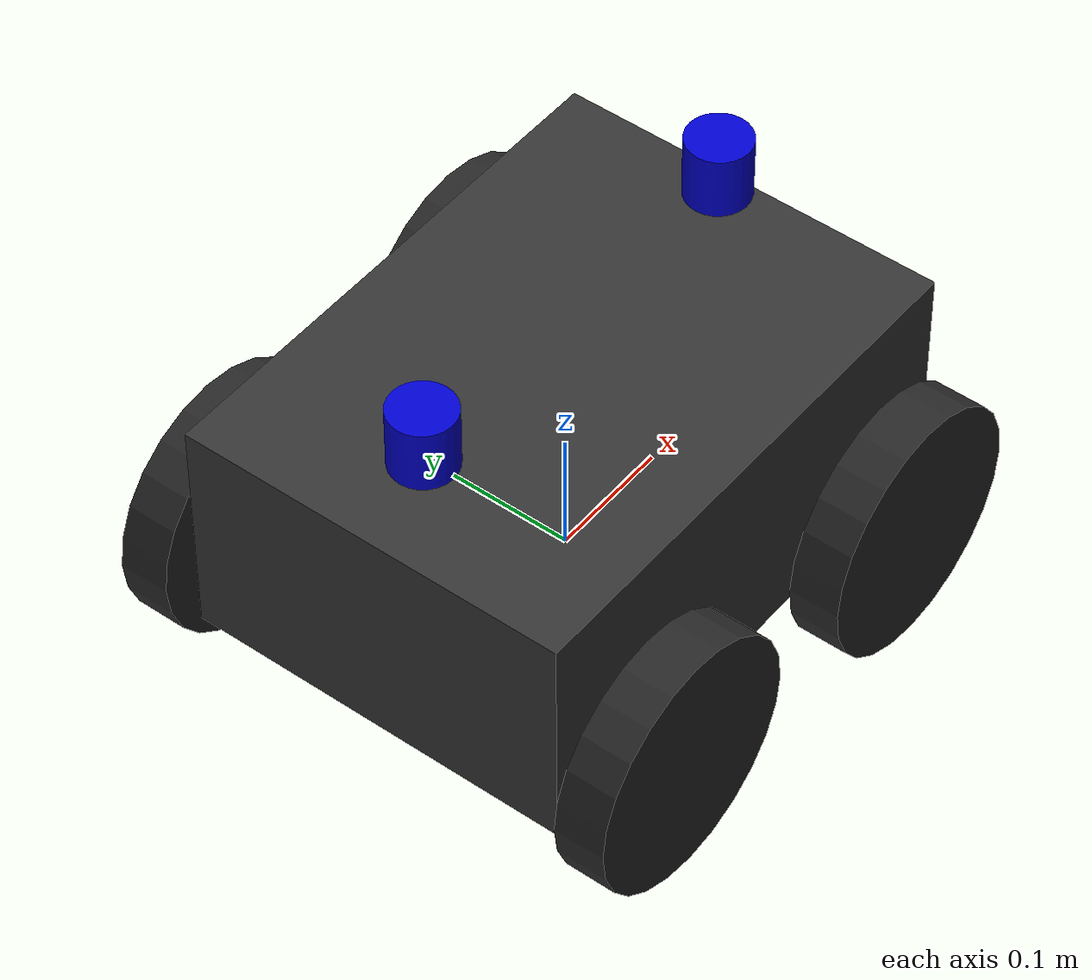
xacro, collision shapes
<?xml version="1.0"?>
<robot name="jackal" xmlns:xacro="http://www.ros.org/wiki/xacro">
  <xacro:arg name="is_sim" default="false" />
  <xacro:arg name="prefix" default="" />
  <xacro:arg name="gazebo_controllers" default="$(find jackal_control)/config/control.yaml" />
  <xacro:property name="PI" value="3.1415926535897931" />

  <xacro:property name="wheelbase" value="0.262" />
  <xacro:property name="track" value="0.37559" />
  <xacro:property name="wheel_vertical_offset" value="0.0345" />
  <xacro:property name="footprint_vertical_offset" value="-0.0655" />
  <xacro:property name="wheel_radius" value="0.098" />
  <xacro:property name="wheel_width" value="0.040" />
  <xacro:property name="chassis_length" value="0.420" />
  <xacro:property name="chassis_width" value="0.310" />
  <xacro:property name="chassis_height" value="0.184" />
  <xacro:property name="dummy_inertia" value="1e-05"/>
  <xacro:property name="mount_spacing" value="0.120" />

  <material name="dark_grey"><color rgba="0.2 0.2 0.2 1.0" /></material>
  <material name="yellow"><color rgba="0.8 0.8 0.0 1.0" /></material>
  <material name="black"><color rgba="0.15 0.15 0.15 1.0" /></material>
  <material name="blue"><color rgba="0.0 0.0 0.8 1.0" /></material>

  <xacro:macro name="wheel" params="prefix *joint_pose">
    <link name="${prefix}_wheel_link">
      <visual>
        <origin xyz="0 0 0" rpy="${PI/2} 0 0"/>
        <geometry><mesh filename="package://jackal_description/meshes/jackal-wheel.stl"/></geometry>
        <material name="black" />
      </visual>
      <collision>
        <origin xyz="0 0 0" rpy="${PI/2} 0 0"/>
        <geometry><cylinder radius="${wheel_radius}" length="${wheel_width}"/></geometry>
      </collision>
      <inertial>
        <origin xyz="0 0 0" rpy="0 0 0"/><mass value="1.0"/>
        <inertia ixx="0.0013" ixy="0" ixz="0" iyy="0.0024" iyz="0" izz="0.0013"/>
      </inertial>
    </link>
    <gazebo reference="${prefix}_wheel_link">
      <material>Gazebo/DarkGrey</material>
      <mu1 value="2.0"/><mu2 value="2.0"/><kp value="10000000.0" /><kd value="1.0" />
    </gazebo>
    <joint name="${prefix}_wheel_joint" type="continuous">
      <parent link="chassis_link"/><child link="${prefix}_wheel_link" />
      <xacro:insert_block name="joint_pose" /><axis xyz="0 1 0" />
    </joint>
  </xacro:macro>

  <xacro:wheel prefix="front_left"><origin xyz="${wheelbase/2} ${track/2} ${wheel_vertical_offset}" rpy="0 0 0" /></xacro:wheel>
  <xacro:wheel prefix="front_right"><origin xyz="${wheelbase/2} ${-track/2} ${wheel_vertical_offset}" rpy="0 0 0" /></xacro:wheel>
  <xacro:wheel prefix="rear_left"><origin xyz="${-wheelbase/2} ${track/2} ${wheel_vertical_offset}" rpy="0 0 0" /></xacro:wheel>
  <xacro:wheel prefix="rear_right"><origin xyz="${-wheelbase/2} ${-track/2} ${wheel_vertical_offset}" rpy="0 0 0" /></xacro:wheel>

  <link name="base_link"></link>
  <joint name="base_link_joint" type="fixed"><parent link="base_link"/><child link="chassis_link" /></joint>
  <link name="chassis_link">
    <visual>
      <origin xyz="0 0 ${footprint_vertical_offset}" rpy="${PI/2} 0 ${PI/2}"/>
      <geometry><mesh filename="package://jackal_description/meshes/jackal-base.stl"/></geometry>
      <material name="dark_grey" />
    </visual>
    <collision>
      <origin xyz="0 0 ${chassis_height/2}"/><geometry><box size="${chassis_length} ${chassis_width} ${chassis_height}"/></geometry>
    </collision>
    <inertial>
      <origin xyz="0.012 0.002 0.067" rpy="0 0 0"/><mass value="16.523"/>
      <inertia ixx="0.3136" ixy="-0.0008" ixz="0.0164" iyy="0.3922" iyz="-0.0009" izz="0.4485"/>
    </inertial>
  </link>

  <joint name="mid_mount_joint" type="fixed"><parent link="chassis_link" /><child link="mid_mount" /><origin xyz="0 0 ${chassis_height}" /></joint>
  <link name="mid_mount"></link>
  <joint name="front_mount_joint" type="fixed"><parent link="mid_mount" /><child link="front_mount" /><origin xyz="${mount_spacing} 0 0" /></joint>
  <link name="front_mount"></link>

  <link name="front_laser">
    <visual><geometry><cylinder radius="0.025" length="0.05"/></geometry><material name="blue"/></visual>
    <collision><geometry><cylinder radius="0.025" length="0.05"/></geometry></collision>
    <inertial><mass value="0.1"/><inertia ixx="0.001" ixy="0" ixz="0" iyy="0.001" iyz="0" izz="0.001"/></inertial>
  </link>
  <joint name="front_laser_joint" type="fixed"><parent link="front_mount"/><child link="front_laser"/><origin xyz="0.05 0 0.05" rpy="0 0 0"/> </joint>

  <gazebo reference="front_laser">
    <material>Gazebo/Blue</material>
    <sensor name="lidar_navigation" type="ray">
      <always_on>true</always_on><visualize>false</visualize><update_rate>30.0</update_rate>
      <ray>
        <scan><horizontal><samples>360</samples><resolution>1</resolution>
          <min_angle>-1.6</min_angle><max_angle>1.6</max_angle></horizontal></scan>
        <range><min>0.40</min><max>50.0</max><resolution>0.01</resolution></range>
      </ray>
      <plugin name="nav_scan" filename="libgazebo_ros_ray_sensor.so">
        <ros><remapping>~/out:=/scan</remapping></ros>
        <output_type>sensor_msgs/LaserScan</output_type><frame_name>front_laser</frame_name>
      </plugin>
    </sensor>
  </gazebo>

  <link name="rear_laser">
    <visual><geometry><cylinder radius="0.025" length="0.05"/></geometry><material name="blue"/></visual>
    <collision><geometry><cylinder radius="0.025" length="0.05"/></geometry></collision>
    <inertial><mass value="0.1"/><inertia ixx="0.001" ixy="0" ixz="0" iyy="0.001" iyz="0" izz="0.001"/></inertial>
  </link>
  <joint name="rear_laser_joint" type="fixed">
    <parent link="chassis_link"/><child link="rear_laser"/>
    <origin xyz="-0.15 0 0.234" rpy="0 0 ${PI}"/>
  </joint>

  <gazebo reference="rear_laser">
    <material>Gazebo/Blue</material>
    <sensor name="rear_lidar" type="ray">
      <always_on>true</always_on><update_rate>30.0</update_rate>
      <ray>
        <scan><horizontal><samples>360</samples><resolution>1</resolution>
          <min_angle>-1.6</min_angle><max_angle>1.6</max_angle></horizontal></scan>
        <range><min>0.40</min><max>50.0</max><resolution>0.01</resolution></range>
      </ray>
      <plugin name="rear_nav_scan" filename="libgazebo_ros_ray_sensor.so">
        <ros><remapping>~/out:=/scan_rear</remapping></ros>
        <output_type>sensor_msgs/LaserScan</output_type><frame_name>rear_laser</frame_name>
      </plugin>
    </sensor>
  </gazebo>

  <link name="front_laser_obstacle_link"/>
  <joint name="front_laser_obstacle_joint" type="fixed"><parent link="front_laser"/><child link="front_laser_obstacle_link"/><origin xyz="0 0 0"/></joint>

  <gazebo reference="front_laser_obstacle_link">
    <sensor name="lidar_obstacles" type="ray">
      <always_on>true</always_on><visualize>false</visualize><update_rate>5.0</update_rate>
      <ray>
        <scan>
          <horizontal><samples>60</samples><min_angle>-0.5</min_angle><max_angle>0.5</max_angle></horizontal>
          <vertical><samples>30</samples><min_angle>-0.45</min_angle><max_angle>-0.1</max_angle></vertical>
        </scan>
        <range><min>0.30</min><max>4.0</max><resolution>0.01</resolution></range>
      </ray>

      <plugin name="obs_scan" filename="libgazebo_ros_ray_sensor.so">
        <ros><remapping>~/out:=/scan_restricted</remapping></ros>
        <output_type>sensor_msgs/PointCloud2</output_type><frame_name>front_laser_obstacle_link</frame_name>
      </plugin>
    </sensor>
  </gazebo>

  <gazebo>
    <plugin name='diff_drive' filename='libgazebo_ros_diff_drive.so'>
      <ros><namespace>/</namespace><remapping>cmd_vel:=cmd_vel</remapping><remapping>odom:=odom</remapping><use_sim_time>true</use_sim_time></ros>
      <update_rate>50</update_rate><num_wheel_pairs>2</num_wheel_pairs>
      <left_joint>front_left_wheel_joint</left_joint><left_joint>rear_left_wheel_joint</left_joint>
      <right_joint>front_right_wheel_joint</right_joint><right_joint>rear_right_wheel_joint</right_joint>
      <wheel_separation>0.37559</wheel_separation><wheel_diameter>0.196</wheel_diameter>
      <max_wheel_torque>60</max_wheel_torque><max_wheel_acceleration>2.0</max_wheel_acceleration>

      <publish_odom>true</publish_odom>
      <publish_odom_tf>false</publish_odom_tf> <publish_wheel_tf>false</publish_wheel_tf>

      <robot_base_frame>base_link</robot_base_frame><odometry_frame>odom</odometry_frame>
    </plugin>
  </gazebo>

  <xacro:include filename="jackal_sensors.urdf.xacro" />
</robot>

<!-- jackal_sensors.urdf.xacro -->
<robot xmlns:xacro="http://www.ros.org/wiki/xacro">

  <link name="gps_link">
    <visual><geometry><cylinder radius="0.02" length="0.05"/></geometry></visual>
  </link>
  <joint name="gps_joint" type="fixed">
    <parent link="mid_mount"/><child link="gps_link"/><origin xyz="0 0 0" rpy="0 0 0"/>
  </joint>

  <gazebo reference="gps_link">
    <sensor name="jackal_gps" type="gps">
      <always_on>true</always_on><update_rate>10</update_rate>
      <plugin name="gps_controller" filename="libgazebo_ros_gps_sensor.so">
        <ros><remapping>~/out:=/gps/fix</remapping></ros>
      </plugin>
    </sensor>
  </gazebo>

  <link name="imu_link"/>
  <joint name="imu_joint" type="fixed">
    <parent link="base_link"/><child link="imu_link"/><origin xyz="0 0 0" rpy="0 0 0"/>
  </joint>

  <gazebo reference="imu_link">
    <sensor name="jackal_imu" type="imu">
      <always_on>true</always_on><update_rate>100</update_rate>
      <plugin name="imu_plugin" filename="libgazebo_ros_imu_sensor.so">
        <ros><remapping>~/out:=/imu</remapping></ros>
        <initial_orientation_as_reference>false</initial_orientation_as_reference>
        <frame_id>imu_link</frame_id>
      </plugin>
    </sensor>
  </gazebo>

</robot>
